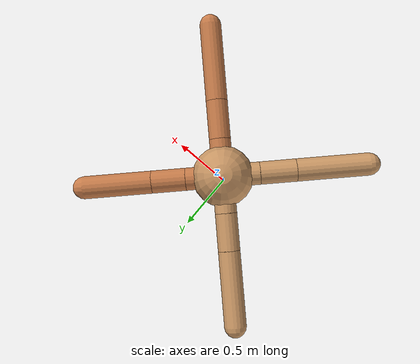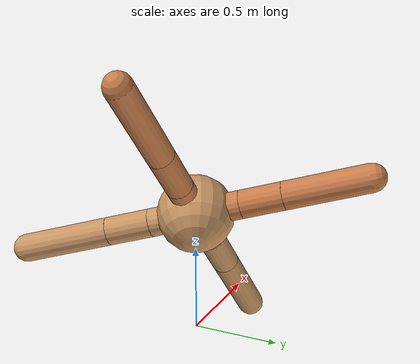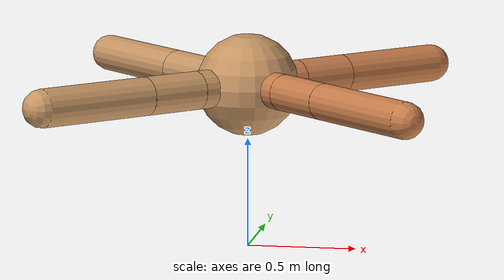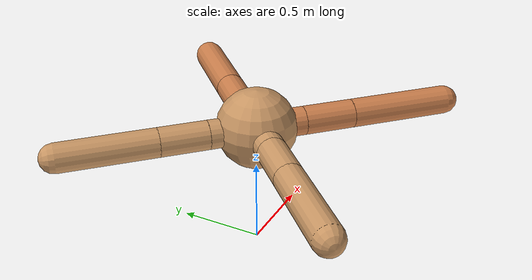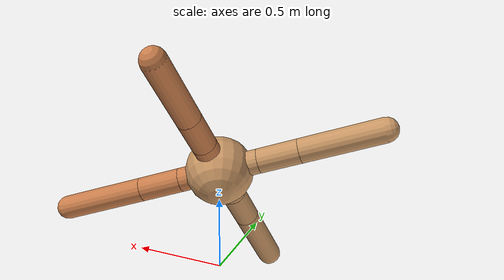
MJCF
<?xml version="1.0" ?>
<mujoco model="ant">

	<compiler angle="degree" coordinate="local" inertiafromgeom="true"/>

	<option integrator="RK4" timestep="0.01"/>

	<custom>

		<numeric data="0.0 0.0 0.55 1.0 0.0 0.0 0.0 0.0 1.0 0.0 -1.0 0.0 -1.0 0.0 1.0" name="init_qpos"/>

	</custom>

	<default>

		<joint armature="1" damping="1" limited="true"/>

		<geom conaffinity="0" condim="3" density="5.0" friction="1.5 0.1 0.1" margin="0.01" rgba="0.8 0.6 0.4 1"/>

	</default>

	<worldbody>

		<body name="torso" pos="0 0 0.75">

			<geom name="torso_geom" pos="0 0 0" size="0.23380933369535564" type="sphere"/>

			<!--joint armature="0" damping="0" limited="false" margin="0.01" name="root" pos="0 0 0" type="free"/-->

			<body name="front_left_leg" pos="0 0 0">

				<geom fromto="0 0 0 0.2 0.2 0" name="aux_1_geom" size="0.08633503928172152" type="capsule" rgba=".8 .5 .3 1"/>

				<body name="aux_1" pos="0.2 0.2 0">

					<joint axis="0 0 1" name="hip_1" pos="0.0 0.0 0.0" range="-40 40" type="hinge"/>

					<geom fromto="0 0 0 0.18190224897064364 0.18190224897064364 0" name="left_leg_geom" size="0.08633503928172152" type="capsule" rgba=".8 .5 .3 1"/>

					<body pos="0.18190224897064364 0.18190224897064364 0" name="front_left_foot">

						<joint axis="-1 1 0" name="ankle_1" pos="0.0 0.0 0.0" range="30 100" type="hinge"/>

						<geom fromto="0 0 0 0.3638044979412873 0.3638044979412873 0" name="left_ankle_geom" size="0.08633503928172152" type="capsule" rgba=".8 .5 .3 1"/>

					</body>

				</body>

			</body>

			<body name="front_right_leg" pos="0 0 0">

				<geom fromto="0 0 0 -0.2 0.2 0" name="aux_2_geom" size="0.08402042510603731" type="capsule"/>

				<body name="aux_2" pos="-0.2 0.2 0">

					<joint axis="0 0 1" name="hip_2" pos="0.0 0.0 0.0" range="-40 40" type="hinge"/>

					<geom fromto="0 0 0 -0.19995288410151932 0.19995288410151932 0" name="right_leg_geom" size="0.08402042510603731" type="capsule"/>

					<body pos="-0.19995288410151932 0.19995288410151932 0" name="front_right_foot">

						<joint axis="1 1 0" name="ankle_2" pos="0.0 0.0 0.0" range="-100 -30" type="hinge"/>

						<geom fromto="0 0 0 -0.39990576820303864 0.39990576820303864 0" name="right_ankle_geom" size="0.08402042510603731" type="capsule"/>

					</body>

				</body>

			</body>

			<body name="left_back_leg" pos="0 0 0">

				<geom fromto="0 0 0 -0.2 -0.2 0" name="aux_3_geom" size="0.08733169722317743" type="capsule"/>

				<body name="aux_3" pos="-0.2 -0.2 0">

					<joint axis="0 0 1" name="hip_3" pos="0.0 0.0 0.0" range="-40 40" type="hinge"/>

					<geom fromto="0 0 0 -0.19625845519102242 -0.19625845519102242 0" name="back_leg_geom" size="0.08733169722317743" type="capsule"/>

					<body pos="-0.19625845519102242 -0.19625845519102242 0" name="left_back_foot">

						<joint axis="-1 1 0" name="ankle_3" pos="0.0 0.0 0.0" range="-100 -30" type="hinge"/>

						<geom fromto="0 0 0 -0.39251691038204484 -0.39251691038204484 0" name="third_ankle_geom" size="0.08733169722317743" type="capsule"/>

					</body>

				</body>

			</body>

			<body name="right_back_leg" pos="0 0 0">

				<geom fromto="0 0 0 0.2 -0.2 0" name="aux_4_geom" size="0.08317442914240586" type="capsule" rgba=".8 .5 .3 1"/>

				<body name="aux_4" pos="0.2 -0.2 0">

					<joint axis="0 0 1" name="hip_4" pos="0.0 0.0 0.0" range="-40 40" type="hinge"/>

					<geom fromto="0 0 0 0.21000315237721345 -0.21000315237721345 0" name="rightback_leg_geom" size="0.08317442914240586" type="capsule" rgba=".8 .5 .3 1"/>

					<body pos="0.21000315237721345 -0.21000315237721345 0" name="right_back_foot">

						<joint axis="1 1 0" name="ankle_4" pos="0.0 0.0 0.0" range="30 100" type="hinge"/>

						<geom fromto="0 0 0 0.4200063047544269 -0.4200063047544269 0" name="fourth_ankle_geom" size="0.08317442914240586" type="capsule" rgba=".8 .5 .3 1"/>

					</body>

				</body>

			</body>

		</body>

	</worldbody>

	<actuator>

		<motor ctrllimited="true" ctrlrange="-1.0 1.0" joint="hip_4" gear="150"/>

		<motor ctrllimited="true" ctrlrange="-1.0 1.0" joint="ankle_4" gear="150"/>

		<motor ctrllimited="true" ctrlrange="-1.0 1.0" joint="hip_1" gear="150"/>

		<motor ctrllimited="true" ctrlrange="-1.0 1.0" joint="ankle_1" gear="150"/>

		<motor ctrllimited="true" ctrlrange="-1.0 1.0" joint="hip_2" gear="150"/>

		<motor ctrllimited="true" ctrlrange="-1.0 1.0" joint="ankle_2" gear="150"/>

		<motor ctrllimited="true" ctrlrange="-1.0 1.0" joint="hip_3" gear="150"/>

		<motor ctrllimited="true" ctrlrange="-1.0 1.0" joint="ankle_3" gear="150"/>

	</actuator>

</mujoco>
